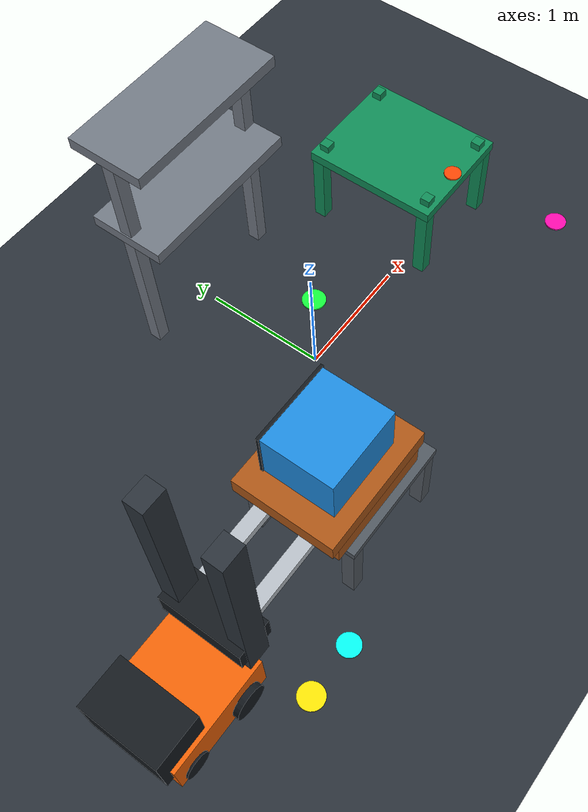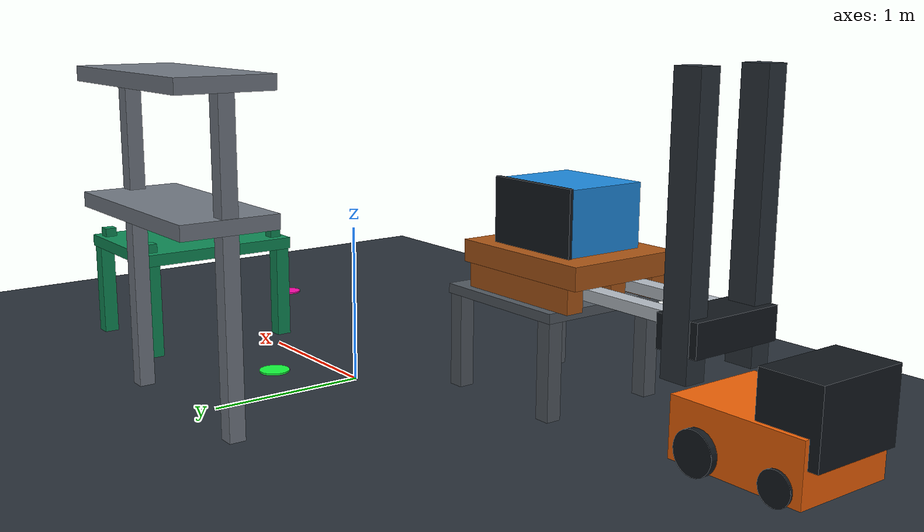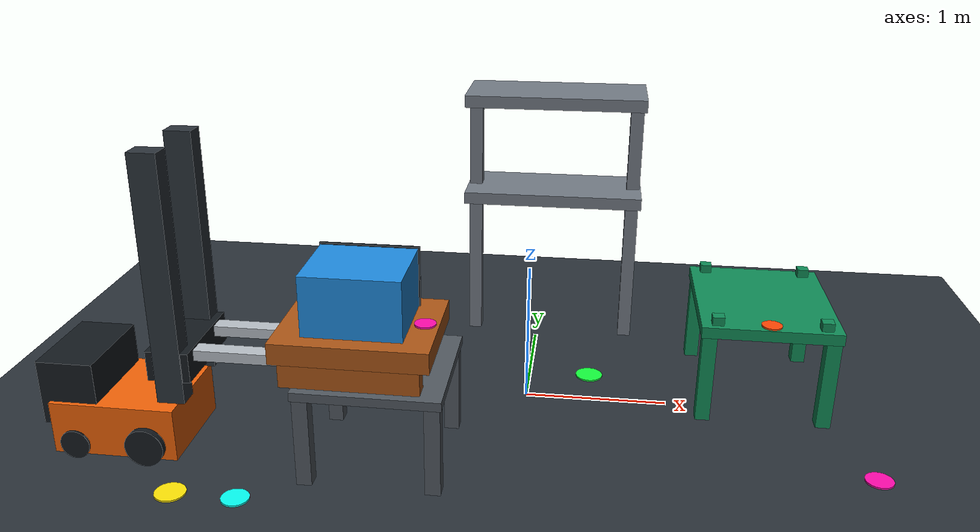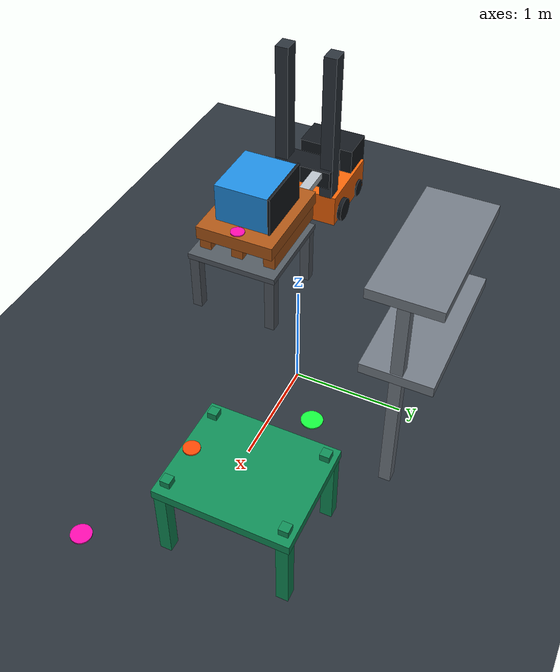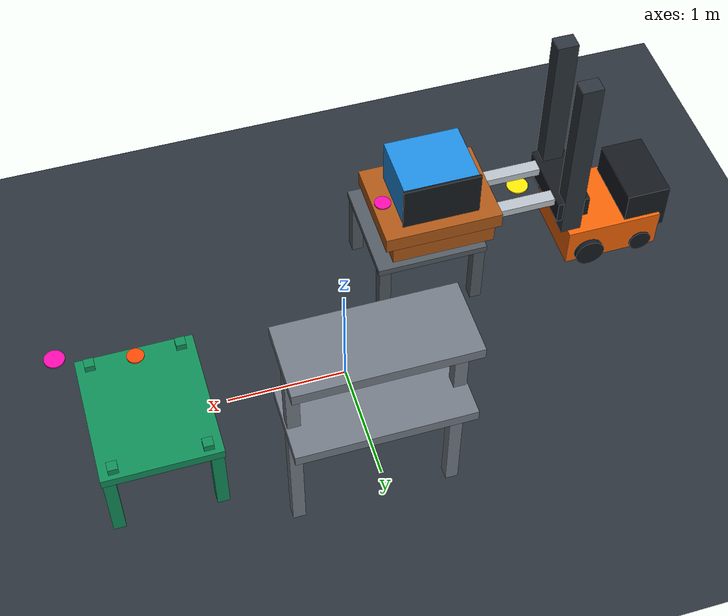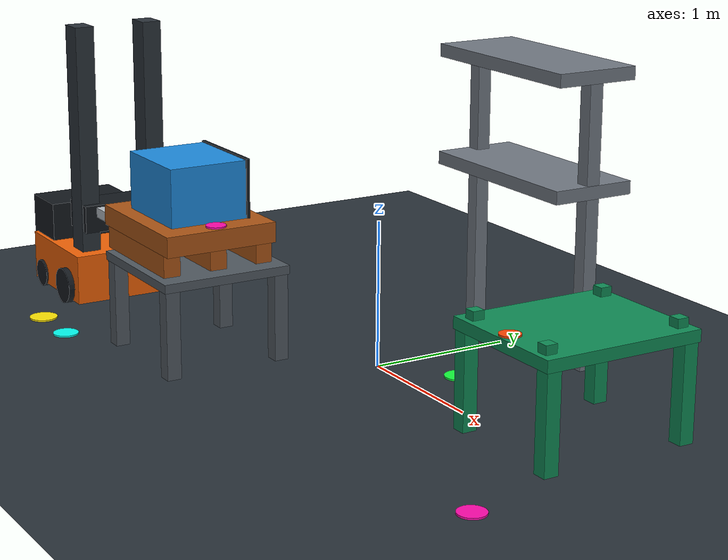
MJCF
<mujoco model="forklift_pallet_delivery">
  <compiler angle="radian" autolimits="true"/>
  <option timestep="0.002" gravity="0 0 -9.81" integrator="implicitfast" solver="Newton" cone="elliptic"/>
  <size nconmax="600" njmax="1200"/>
  <statistic center="0 0 0.78" extent="2.8"/>
  <visual>
    <global offwidth="640" offheight="480"/>
    <quality shadowsize="2048"/>
    <map znear="0.01" zfar="12"/>
    <headlight ambient="0.34 0.34 0.38" diffuse="0.74 0.74 0.72" specular="0.2 0.2 0.2"/>
  </visual>

  <asset>
    <texture name="floor_tex" type="2d" builtin="checker" rgb1="0.11 0.14 0.17" rgb2="0.22 0.25 0.28" width="512" height="512"/>
    <material name="floor_mat" texture="floor_tex" texrepeat="7 7" reflectance="0.08"/>
    <material name="pad_mat" rgba="0.32 0.35 0.38 1" specular="0.12" roughness="0.76"/>
    <material name="forklift_orange" rgba="0.95 0.39 0.03 1" specular="0.35" roughness="0.32"/>
    <material name="forklift_dark" rgba="0.08 0.10 0.12 1" specular="0.28" roughness="0.46"/>
    <material name="mast_mat" rgba="0.17 0.20 0.23 1" specular="0.28" roughness="0.48"/>
    <material name="fork_mat" rgba="0.72 0.75 0.78 1" specular="0.42" roughness="0.26"/>
    <material name="pallet_mat" rgba="0.68 0.34 0.09 1" specular="0.16" roughness="0.72"/>
    <material name="crate_mat" rgba="0.12 0.55 0.88 1" specular="0.28" roughness="0.40"/>
    <material name="zone_mat" rgba="0.06 0.55 0.34 1" specular="0.2" roughness="0.54"/>
    <material name="rack_mat" rgba="0.45 0.48 0.52 1" specular="0.18" roughness="0.62"/>
    <material name="marker_yellow" rgba="1 0.9 0.02 1" emission="0.35"/>
    <material name="marker_cyan" rgba="0.02 1 0.95 1" emission="0.35"/>
    <material name="marker_magenta" rgba="1 0.04 0.68 1" emission="0.35"/>
    <material name="marker_green" rgba="0.08 1 0.24 1" emission="0.35"/>
    <material name="marker_orange" rgba="1 0.28 0.02 1" emission="0.35"/>
  </asset>

  <default>
    <joint damping="1.0" armature="0.02"/>
    <geom friction="0.78 0.01 0.002" condim="6" solref="0.008 1" solimp="0.9 0.95 0.001"/>
    <default class="world_part">
      <geom contype="1" conaffinity="7"/>
    </default>
    <default class="robot_part">
      <geom contype="2" conaffinity="7"/>
    </default>
    <default class="payload_part">
      <geom contype="4" conaffinity="7"/>
    </default>
  </default>

  <worldbody>
    <light name="key_light" pos="-2.0 -2.5 4.6" dir="0.2 0.25 -1" directional="true" castshadow="true"/>
    <light name="fill_light" pos="2.5 1.6 3.3" dir="-0.6 -0.2 -1" directional="true" diffuse="0.42 0.45 0.5" specular="0.08 0.08 0.08"/>
    <camera name="delivery_camera" pos="3.6723 -4.6358 5.2237" quat="0.8296993376 0.4411589632 0.1605687312 0.3019858623" fovy="45"/>
    <geom name="ground_geom" type="plane" size="4.0 3.0 0.1" material="floor_mat" class="world_part"/>

    <body name="loading_pad" pos="-0.89 -0.9 0.63" childclass="world_part">
      <geom name="loading_pad_geom" type="box" size="0.47 0.46 0.03" material="pad_mat"/>
      <geom name="loading_pad_leg_a" type="box" pos="-0.41 -0.40 -0.33" size="0.05 0.05 0.30" material="pad_mat"/>
      <geom name="loading_pad_leg_b" type="box" pos="-0.41 0.40 -0.33" size="0.05 0.05 0.30" material="pad_mat"/>
      <geom name="loading_pad_leg_c" type="box" pos="0.41 -0.40 -0.33" size="0.05 0.05 0.30" material="pad_mat"/>
      <geom name="loading_pad_leg_d" type="box" pos="0.41 0.40 -0.33" size="0.05 0.05 0.30" material="pad_mat"/>
    </body>

    <body name="forklift_base" pos="-2.6 -0.9 0.03" childclass="robot_part">
      <joint name="forklift_x" type="slide" axis="1 0 0" range="-0.3 4.8" damping="3.2" armature="0.04"/>
      <joint name="forklift_y" type="slide" axis="0 1 0" range="-0.4 2.5" damping="3.2" armature="0.04"/>
      <joint name="forklift_yaw" type="hinge" axis="0 0 1" range="-0.35 0.35" damping="2.0" armature="0.02"/>
      <geom name="forklift_base_geom" type="box" pos="0 0 0.18" size="0.42 0.34 0.18" mass="5.8" material="forklift_orange"/>
      <geom name="forklift_counterweight" type="box" pos="-0.29 0 0.42" size="0.19 0.31 0.22" mass="3.0" material="forklift_dark"/>
      <geom name="front_wheel_left" type="cylinder" pos="0.22 0.31 0.10" quat="0.7071068 0.7071068 0 0" size="0.13 0.075" mass="0.25" material="forklift_dark"/>
      <geom name="front_wheel_right" type="cylinder" pos="0.22 -0.31 0.10" quat="0.7071068 0.7071068 0 0" size="0.13 0.075" mass="0.25" material="forklift_dark"/>
      <geom name="rear_wheel_left" type="cylinder" pos="-0.27 0.29 0.07" quat="0.7071068 0.7071068 0 0" size="0.10 0.065" mass="0.2" material="forklift_dark"/>
      <geom name="rear_wheel_right" type="cylinder" pos="-0.27 -0.29 0.07" quat="0.7071068 0.7071068 0 0" size="0.10 0.065" mass="0.2" material="forklift_dark"/>
      <body name="forklift_mast" pos="0.42 0 0.42">
        <geom name="forklift_mast_left" type="box" pos="0 0.26 0.82" size="0.09 0.07 0.82" mass="2.4" material="mast_mat"/>
        <geom name="forklift_mast_right" type="box" pos="0 -0.26 0.82" size="0.09 0.07 0.82" mass="2.4" material="mast_mat"/>
        <body name="fork_carriage" pos="0 0 0.25">
          <joint name="fork_lift" type="slide" axis="0 0 1" range="0 0.35" damping="4.5" armature="0.03"/>
          <geom name="fork_carriage_geom" type="box" pos="0 0 0" size="0.14 0.32 0.10" mass="1.6" material="forklift_dark"/>
          <!-- The tines ride in the pallet's fork channel: 0.715-0.785 m at zero
               lift, between the stand deck at 0.66 and the pallet deck at 0.81. -->
          <body name="left_fork" pos="0.68 0.18 0.05">
            <geom name="left_fork" type="box" size="0.55 0.055 0.035" mass="0.45" material="fork_mat"/>
          </body>
          <body name="right_fork" pos="0.68 -0.18 0.05">
            <geom name="right_fork" type="box" size="0.55 0.055 0.035" mass="0.45" material="fork_mat"/>
          </body>
          <site name="fork_tip_site" type="sphere" pos="1.14 0 0.05" size="0.025" rgba="0.98 0.84 0.05 0.4" group="4"/>
        </body>
      </body>
    </body>

    <body name="pallet" pos="-1.0 -0.9 0.88" childclass="payload_part">
      <freejoint name="pallet_free"/>
      <geom name="pallet_deck" type="box" size="0.50 0.40 0.07" mass="1.5" material="pallet_mat" friction="0.85 0.01 0.003"/>
      <geom name="pallet_runner_left" type="box" pos="0 0.34 -0.145" size="0.44 0.06 0.075" mass="0.30" material="pallet_mat"/>
      <geom name="pallet_runner_center" type="box" pos="0 0 -0.145" size="0.44 0.06 0.075" mass="0.30" material="pallet_mat"/>
      <geom name="pallet_runner_right" type="box" pos="0 -0.34 -0.145" size="0.44 0.06 0.075" mass="0.30" material="pallet_mat"/>
      <body name="payload_crate" pos="0 0 0.27">
        <geom name="payload_crate_geom" type="box" size="0.32 0.28 0.20" mass="0.8" material="crate_mat"/>
        <geom name="payload_crate_band" type="box" pos="0 0.285 0" size="0.33 0.012 0.21" mass="0.15" material="forklift_dark"/>
      </body>
      <site name="engage_pallet_marker" type="cylinder" pos="0.41 0 0.076" size="0.07 0.006" material="marker_magenta" group="2"/>
    </body>

    <body name="delivery_zone" pos="1.55 0.35 0.68" childclass="world_part">
      <geom name="delivery_zone_bottom" type="box" pos="0.11 0 0.0" size="0.47 0.56 0.04" material="zone_mat"/>
      <geom name="delivery_zone_leg_a" type="box" pos="-0.30 -0.50 -0.36" size="0.05 0.05 0.32" material="zone_mat"/>
      <geom name="delivery_zone_leg_b" type="box" pos="-0.30 0.50 -0.36" size="0.05 0.05 0.32" material="zone_mat"/>
      <geom name="delivery_zone_leg_c" type="box" pos="0.52 -0.50 -0.36" size="0.05 0.05 0.32" material="zone_mat"/>
      <geom name="delivery_zone_leg_d" type="box" pos="0.52 0.50 -0.36" size="0.05 0.05 0.32" material="zone_mat"/>
      <geom name="delivery_zone_corner_a" type="box" pos="-0.25 -0.48 0.07" size="0.04 0.04 0.03" material="zone_mat"/>
      <geom name="delivery_zone_corner_b" type="box" pos="-0.25 0.48 0.07" size="0.04 0.04 0.03" material="zone_mat"/>
      <geom name="delivery_zone_corner_c" type="box" pos="0.47 -0.48 0.07" size="0.04 0.04 0.03" material="zone_mat"/>
      <geom name="delivery_zone_corner_d" type="box" pos="0.47 0.48 0.07" size="0.04 0.04 0.03" material="zone_mat"/>
    </body>

    <body name="storage_rack" pos="0.10 1.15 0.72" childclass="world_part">
      <geom name="storage_rack_post_a" type="box" pos="-0.62 0 0.29" size="0.05 0.05 1.01" material="rack_mat"/>
      <geom name="storage_rack_post_b" type="box" pos="0.62 0 0.29" size="0.05 0.05 1.01" material="rack_mat"/>
      <geom name="storage_rack_shelf" type="box" pos="0 0 0.50" size="0.68 0.30 0.045" material="rack_mat"/>
      <geom name="storage_rack_top" type="box" pos="0 0 1.26" size="0.68 0.30 0.045" material="rack_mat"/>
    </body>

    <site name="drive_to_pallet_marker" type="cylinder" pos="-2.10 -1.55 0.006" size="0.10 0.006" material="marker_yellow" group="2"/>
    <site name="raise_forks_marker" type="cylinder" pos="-1.68 -1.55 0.006" size="0.09 0.006" material="marker_cyan" group="2"/>
    <site name="carry_to_drop_zone_marker" type="cylinder" pos="0.45 0.35 0.006" size="0.10 0.006" material="marker_green" group="2"/>
    <site name="lower_forks_release_marker" type="cylinder" pos="1.66 -0.13 0.726" size="0.07 0.006" material="marker_orange" group="2"/>
    <site name="inspect_forklift_delivery_marker" type="cylinder" pos="2.30 -0.82 0.006" size="0.09 0.006" material="marker_magenta" group="2"/>
  </worldbody>

  <contact>
    <pair name="wheel_floor_front_left" geom1="ground_geom" geom2="front_wheel_left" condim="3" friction="0.02 0.02 0.001 0.0001 0.0001"/>
    <pair name="wheel_floor_front_right" geom1="ground_geom" geom2="front_wheel_right" condim="3" friction="0.02 0.02 0.001 0.0001 0.0001"/>
    <pair name="wheel_floor_rear_left" geom1="ground_geom" geom2="rear_wheel_left" condim="3" friction="0.02 0.02 0.001 0.0001 0.0001"/>
    <pair name="wheel_floor_rear_right" geom1="ground_geom" geom2="rear_wheel_right" condim="3" friction="0.02 0.02 0.001 0.0001 0.0001"/>
  </contact>

  <equality>
    <weld name="pallet_grasp" body1="fork_carriage" body2="pallet" relpose="0.68 0 0.155 1 0 0 0"
          active="false" solref="0.01 1" solimp="0.97 0.995 0.001"/>
  </equality>

  <actuator>
    <position name="forklift_x_motor" joint="forklift_x" kp="1800" kv="150" ctrlrange="-0.3 4.8" forcerange="-400 400"/>
    <position name="forklift_y_motor" joint="forklift_y" kp="1800" kv="150" ctrlrange="-0.4 2.5" forcerange="-400 400"/>
    <position name="forklift_yaw_motor" joint="forklift_yaw" kp="80" kv="12" ctrlrange="-0.35 0.35" forcerange="-60 60"/>
    <position name="fork_lift_motor" joint="fork_lift" kp="6000" kv="300" ctrlrange="0 0.35" forcerange="-600 600"/>
  </actuator>
</mujoco>
